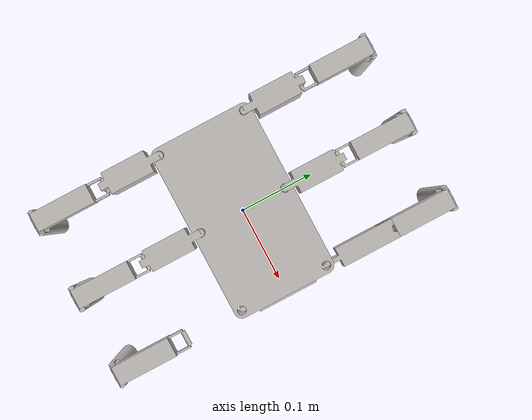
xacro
<?xml version="1.0" ?>

<robot name="hexapod" xmlns:xacro="http://wiki.ros.org/xacro">

    <xacro:include filename="$(find hexapod)/urdf/hexapod.gazebo" />
    <xacro:include filename="$(find hexapod)/urdf/hexapod.urdf" />

    <xacro:macro name="transmission_block" params="joint_name">
    <transmission name="trans1">
      <type>transmission_interface/SimpleTransmission</type>
      <joint name="${joint_name}">
        <hardwareInterface>hardware_interface/EffortJointInterface</hardwareInterface>
      </joint>
      <actuator name="motor1">
        <hardwareInterface>hardware_interface/EffortJointInterface</hardwareInterface>
        <mechanicalReduction>1</mechanicalReduction>
      </actuator>
    </transmission>
  </xacro:macro>

    <xacro:transmission_block joint_name="body_leg_0"/>
    <xacro:transmission_block joint_name="body_leg_1"/>
    <xacro:transmission_block joint_name="body_leg_2"/>
    <xacro:transmission_block joint_name="body_leg_3"/>
    <xacro:transmission_block joint_name="body_leg_4"/>
    <xacro:transmission_block joint_name="body_leg_5"/>

    <xacro:transmission_block joint_name="leg_0_1_2"/>
    <xacro:transmission_block joint_name="leg_1_1_2"/>
    <xacro:transmission_block joint_name="leg_2_1_2"/>
    <xacro:transmission_block joint_name="leg_3_1_2"/>
    <xacro:transmission_block joint_name="leg_4_1_2"/>
    <xacro:transmission_block joint_name="leg_5_1_2"/>

    <xacro:transmission_block joint_name="leg_0_2_3"/>
    <xacro:transmission_block joint_name="leg_1_2_3"/>
    <xacro:transmission_block joint_name="leg_2_2_3"/>
    <xacro:transmission_block joint_name="leg_3_2_3"/>
    <xacro:transmission_block joint_name="leg_4_2_3"/>
    <xacro:transmission_block joint_name="leg_5_2_3"/>

</robot>

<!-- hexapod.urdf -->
<robot
  name="hexapod">
  <link name="base_link"/>
    <joint name="j_phantomx_attachment" type="fixed">
    <parent link="base_link"/>
    <child link="BODY"/>
    <origin rpy="0 0 0" xyz="0 0 0"/>
  </joint>
  <link
    name="BODY">
    <inertial>
      <origin
        xyz="1.6123E-18 2.0011E-17 0.02"
        rpy="0 0 0" />
      <mass
        value="10.113" />
      <inertia
        ixx="0.017376"
        ixy="1.3248E-18"
        ixz="-2.583E-20"
        iyy="0.048968"
        iyz="4.6469E-19"
        izz="0.063647" />
    </inertial>
    <visual>
      <origin
        xyz="0 0 0"
        rpy="0 0 0" />
      <geometry>
        <mesh
          filename="package://hexapod/meshes/base_link.STL" />
      </geometry>
      <material
        name="">
        <color
          rgba="0.77647 0.75686 0.73725 1" />
      </material>
    </visual>
    <collision>
      <origin
        xyz="0 0 0"
        rpy="0 0 0" />
      <geometry>
        <mesh
          filename="package://hexapod/meshes/base_link.STL" />
      </geometry>
    </collision>
  </link>
  <link
    name="leg_0_1">
    <inertial>
      <origin
        xyz="-1.3878E-17 -0.044545 -3.4694E-18"
        rpy="0 0 0" />
      <mass
        value="0.72839" />
      <inertia
        ixx="0.00043937"
        ixy="-8.7578E-21"
        ixz="1.2531E-20"
        iyy="0.00019126"
        iyz="-6.4529E-20"
        izz="0.00034884" />
    </inertial>
    <visual>
      <origin
        xyz="0 0 0"
        rpy="0 0 0" />
      <geometry>
        <mesh
          filename="package://hexapod/meshes/leg_0_1.STL" />
      </geometry>
      <material
        name="">
        <color
          rgba="0.77647 0.75686 0.73725 1" />
      </material>
    </visual>
    <collision>
      <origin
        xyz="0 0 0"
        rpy="0 0 0" />
      <geometry>
        <mesh
          filename="package://hexapod/meshes/leg_0_1.STL" />
      </geometry>
    </collision>
  </link>
  <joint
    name="body_leg_0"
    type="continuous">
    <origin
      xyz="0.11 -0.06 0.02"
      rpy="0 0 0" />
    <parent
      link="base_link" />
    <child
      link="leg_0_1" />
    <axis
      xyz="0 0 1" />
    <limit
      lower="-1.57"
      upper="1.57"
      effort="30"
      velocity="3" />
  </joint>
  <link
    name="leg_0_2">
    <inertial>
      <origin
        xyz="1.0408E-17 0.058002 4.1633E-16"
        rpy="0 0 0" />
      <mass
        value="0.41845" />
      <inertia
        ixx="0.00026275"
        ixy="-4.5843E-20"
        ixz="1.1727E-21"
        iyy="4.7333E-05"
        iyz="1.0004E-20"
        izz="0.00026229" />
    </inertial>
    <visual>
      <origin
        xyz="0 0 0"
        rpy="0 0 0" />
      <geometry>
        <mesh
          filename="package://hexapod/meshes/leg_0_2.STL" />
      </geometry>
      <material
        name="">
        <color
          rgba="0.77647 0.75686 0.73725 1" />
      </material>
    </visual>
    <collision>
      <origin
        xyz="0 0 0"
        rpy="0 0 0" />
      <geometry>
        <mesh
          filename="package://hexapod/meshes/leg_0_2.STL" />
      </geometry>
    </collision>
  </link>
  <joint
    name="leg_0_1_2"
    type="revolute">
    <origin
      xyz="0 -0.08 0"
      rpy="3.1416 1.5708 0" />
    <parent
      link="leg_0_1" />
    <child
      link="leg_0_2" />
    <axis
      xyz="0 0 -1" />
    <limit
      lower="-1.57"
      upper="1.57"
      effort="30"
      velocity="3" />
  </joint>
  <link
    name="leg_0_3">
    <inertial>
      <origin
        xyz="0.084869 3.0882E-05 8.1879E-16"
        rpy="0 0 0" />
      <mass
        value="0.60411" />
      <inertia
        ixx="6.6228E-05"
        ixy="-9.4646E-08"
        ixz="-8.0496E-21"
        iyy="0.0010646"
        iyz="6.6317E-21"
        izz="0.0010259" />
    </inertial>
    <visual>
      <origin
        xyz="0 0 0"
        rpy="0 0 0" />
      <geometry>
        <mesh
          filename="package://hexapod/meshes/leg_0_3.STL" />
      </geometry>
      <material
        name="">
        <color
          rgba="0.77647 0.75686 0.73725 1" />
      </material>
    </visual>
    <collision>
      <origin
        xyz="0 0 0"
        rpy="0 0 0" />
      <geometry>
        <mesh
          filename="package://hexapod/meshes/leg_0_3.STL" />
      </geometry>
    </collision>
  </link>
  <joint
    name="leg_0_2_3"
    type="revolute">
    <origin
      xyz="0 0.1 0"
      rpy="0 0 0" />
    <parent
      link="leg_0_2" />
    <child
      link="leg_0_3" />
    <axis
      xyz="0 0 -1" />
    <limit
      lower="-1.57"
      upper="1.57"
      effort="30"
      velocity="3" />
  </joint>
  <link
    name="leg_1_1">
    <inertial>
      <origin
        xyz="8.3946E-19 -0.044545 -3.4694E-18"
        rpy="0 0 0" />
      <mass
        value="0.72839" />
      <inertia
        ixx="0.00043937"
        ixy="-5.1676E-21"
        ixz="1.8426E-20"
        iyy="0.00019126"
        iyz="-5.4987E-20"
        izz="0.00034884" />
    </inertial>
    <visual>
      <origin
        xyz="0 0 0"
        rpy="0 0 0" />
      <geometry>
        <mesh
          filename="package://hexapod/meshes/leg_1_1.STL" />
      </geometry>
      <material
        name="">
        <color
          rgba="0.77647 0.75686 0.73725 1" />
      </material>
    </visual>
    <collision>
      <origin
        xyz="0 0 0"
        rpy="0 0 0" />
      <geometry>
        <mesh
          filename="package://hexapod/meshes/leg_1_1.STL" />
      </geometry>
    </collision>
  </link>
  <joint
    name="body_leg_1"
    type="revolute">
    <origin
      xyz="0 -0.06 0.02"
      rpy="0 0 0" />
    <parent
      link="base_link" />
    <child
      link="leg_1_1" />
    <axis
      xyz="0 0 1" />
    <limit
      lower="-1.57"
      upper="1.57"
      effort="30"
      velocity="3" />
  </joint>
  <link
    name="leg_1_2">
    <inertial>
      <origin
        xyz="3.4694E-18 0.058002 6.9159E-16"
        rpy="0 0 0" />
      <mass
        value="0.41845" />
      <inertia
        ixx="0.00026275"
        ixy="-2.0171E-20"
        ixz="1.468E-21"
        iyy="4.7333E-05"
        iyz="1.2515E-22"
        izz="0.00026229" />
    </inertial>
    <visual>
      <origin
        xyz="0 0 0"
        rpy="0 0 0" />
      <geometry>
        <mesh
          filename="package://hexapod/meshes/leg_1_2.STL" />
      </geometry>
      <material
        name="">
        <color
          rgba="0.77647 0.75686 0.73725 1" />
      </material>
    </visual>
    <collision>
      <origin
        xyz="0 0 0"
        rpy="0 0 0" />
      <geometry>
        <mesh
          filename="package://hexapod/meshes/leg_1_2.STL" />
      </geometry>
    </collision>
  </link>
  <joint
    name="leg_1_1_2"
    type="revolute">
    <origin
      xyz="0 -0.08 0"
      rpy="3.1416 1.5708 0" />
    <parent
      link="leg_1_1" />
    <child
      link="leg_1_2" />
    <axis
      xyz="0 0 -1" />
    <limit
      lower="-1.57"
      upper="1.57"
      effort="30"
      velocity="3" />
  </joint>
  <link
    name="leg_1_3">
    <inertial>
      <origin
        xyz="0.084869 3.0882E-05 1.1215E-15"
        rpy="0 0 0" />
      <mass
        value="0.60411" />
      <inertia
        ixx="6.6228E-05"
        ixy="-9.4646E-08"
        ixz="1.4558E-20"
        iyy="0.0010646"
        iyz="6.946E-21"
        izz="0.0010259" />
    </inertial>
    <visual>
      <origin
        xyz="0 0 0"
        rpy="0 0 0" />
      <geometry>
        <mesh
          filename="package://hexapod/meshes/leg_1_3.STL" />
      </geometry>
      <material
        name="">
        <color
          rgba="0.77647 0.75686 0.73725 1" />
      </material>
    </visual>
    <collision>
      <origin
        xyz="0 0 0"
        rpy="0 0 0" />
      <geometry>
        <mesh
          filename="package://hexapod/meshes/leg_1_3.STL" />
      </geometry>
    </collision>
  </link>
  <joint
    name="leg_1_2_3"
    type="revolute">
    <origin
      xyz="0 0.1 0"
      rpy="0 0 0" />
    <parent
      link="leg_1_2" />
    <child
      link="leg_1_3" />
    <axis
      xyz="0 0 -1" />
    <limit
      lower="-1.57"
      upper="1.57"
      effort="30"
      velocity="3" />
  </joint>
  <link
    name="leg_2_1">
    <inertial>
      <origin
        xyz="0 -0.0445450847414412 -3.46944695195361E-18"
        rpy="0 0 0" />
      <mass
        value="0.728389334455051" />
      <inertia
        ixx="0.000439366489580605"
        ixy="-9.68414164900796E-21"
        ixz="1.25312997166837E-20"
        iyy="0.000191259700311432"
        iyz="-6.18146469128453E-20"
        izz="0.000348844779107573" />
    </inertial>
    <visual>
      <origin
        xyz="0 0 0"
        rpy="0 0 0" />
      <geometry>
        <mesh
          filename="package://hexapod/meshes/leg_2_1.STL" />
      </geometry>
      <material
        name="">
        <color
          rgba="0.776470588235294 0.756862745098039 0.737254901960784 1" />
      </material>
    </visual>
    <collision>
      <origin
        xyz="0 0 0"
        rpy="0 0 0" />
      <geometry>
        <mesh
          filename="package://hexapod/meshes/leg_2_1.STL" />
      </geometry>
    </collision>
  </link>
  <joint
    name="body_leg_2"
    type="revolute">
    <origin
      xyz="-0.11 -0.06 0.02"
      rpy="0 0 0" />
    <parent
      link="base_link" />
    <child
      link="leg_2_1" />
    <axis
      xyz="0 0 1" />
    <limit
      lower="-1.57"
      upper="1.57"
      effort="30"
      velocity="3" />
  </joint>
  <link
    name="leg_2_2">
    <inertial>
      <origin
        xyz="3.46944695195361E-18 0.0580015769708153 4.16333634234434E-16"
        rpy="0 0 0" />
      <mass
        value="0.418452411802267" />
      <inertia
        ixx="0.000262751554672186"
        ixy="-2.29707246501853E-20"
        ixz="1.17440633782818E-21"
        iyy="4.73331054250092E-05"
        iyz="8.90910991327263E-21"
        izz="0.000262289237082029" />
    </inertial>
    <visual>
      <origin
        xyz="0 0 0"
        rpy="0 0 0" />
      <geometry>
        <mesh
          filename="package://hexapod/meshes/leg_2_2.STL" />
      </geometry>
      <material
        name="">
        <color
          rgba="0.776470588235294 0.756862745098039 0.737254901960784 1" />
      </material>
    </visual>
    <collision>
      <origin
        xyz="0 0 0"
        rpy="0 0 0" />
      <geometry>
        <mesh
          filename="package://hexapod/meshes/leg_2_2.STL" />
      </geometry>
    </collision>
  </link>
  <joint
    name="leg_2_1_2"
    type="revolute">
    <origin
      xyz="0 -0.08 0"
      rpy="3.1416 1.5708 0" />
    <parent
      link="leg_2_1" />
    <child
      link="leg_2_2" />
    <axis
      xyz="0 0 -1" />
    <limit
      lower="-1.57"
      upper="1.57"
      effort="30"
      velocity="3" />
  </joint>
  <link
    name="leg_2_3">
    <inertial>
      <origin
        xyz="0.0848685291504994 3.08818446349557E-05 8.46545056276682E-16"
        rpy="0 0 0" />
      <mass
        value="0.604107235995325" />
      <inertia
        ixx="6.62284657464222E-05"
        ixy="-9.46460575317657E-08"
        ixz="-1.41036926063462E-20"
        iyy="0.0010645650517775"
        iyz="3.46274953425248E-21"
        izz="0.0010258729180328" />
    </inertial>
    <visual>
      <origin
        xyz="0 0 0"
        rpy="0 0 0" />
      <geometry>
        <mesh
          filename="package://hexapod/meshes/leg_2_3.STL" />
      </geometry>
      <material
        name="">
        <color
          rgba="0.776470588235294 0.756862745098039 0.737254901960784 1" />
      </material>
    </visual>
    <collision>
      <origin
        xyz="0 0 0"
        rpy="0 0 0" />
      <geometry>
        <mesh
          filename="package://hexapod/meshes/leg_2_3.STL" />
      </geometry>
    </collision>
  </link>
  <joint
    name="leg_2_2_3"
    type="revolute">
    <origin
      xyz="0 0.1 0"
      rpy="0 0 0" />
    <parent
      link="leg_2_2" />
    <child
      link="leg_2_3" />
    <axis
      xyz="0 0 -1" />
    <limit
      lower="-1.57"
      upper="1.57"
      effort="30"
      velocity="3" />
  </joint>
  <link
    name="leg_3_1">
    <inertial>
      <origin
        xyz="-3.33066907387547E-16 0.0445450847414412 -3.46944695195361E-18"
        rpy="0 0 0" />
      <mass
        value="0.728389334455052" />
      <inertia
        ixx="0.000439366489580605"
        ixy="1.73224222987974E-18"
        ixz="-1.04914228023895E-20"
        iyy="0.000191259700311432"
        iyz="5.99711139565986E-20"
        izz="0.000348844779107574" />
    </inertial>
    <visual>
      <origin
        xyz="0 0 0"
        rpy="0 0 0" />
      <geometry>
        <mesh
          filename="package://hexapod/meshes/leg_3_1.STL" />
      </geometry>
      <material
        name="">
        <color
          rgba="0.776470588235294 0.756862745098039 0.737254901960784 1" />
      </material>
    </visual>
    <collision>
      <origin
        xyz="0 0 0"
        rpy="0 0 0" />
      <geometry>
        <mesh
          filename="package://hexapod/meshes/leg_3_1.STL" />
      </geometry>
    </collision>
  </link>
  <joint
    name="body_leg_3"
    type="revolute">
    <origin
      xyz="-0.11 0.06 0.02"
      rpy="0 0 0" />
    <parent
      link="base_link" />
    <child
      link="leg_3_1" />
    <axis
      xyz="0 0 1" />
    <limit
      lower="-1.57"
      upper="1.57"
      effort="30"
      velocity="3" />
  </joint>
  <link
    name="leg_3_2">
    <inertial>
      <origin
        xyz="3.46944695195361E-18 0.0580015769708153 -1.52655665885959E-16"
        rpy="0 0 0" />
      <mass
        value="0.418452411802267" />
      <inertia
        ixx="0.000262751554672186"
        ixy="-3.19297811222879E-20"
        ixz="-1.82686702704007E-21"
        iyy="4.73331054250092E-05"
        iyz="3.83984040313595E-21"
        izz="0.000262289237082029" />
    </inertial>
    <visual>
      <origin
        xyz="0 0 0"
        rpy="0 0 0" />
      <geometry>
        <mesh
          filename="package://hexapod/meshes/leg_3_2.STL" />
      </geometry>
      <material
        name="">
        <color
          rgba="0.776470588235294 0.756862745098039 0.737254901960784 1" />
      </material>
    </visual>
    <collision>
      <origin
        xyz="0 0 0"
        rpy="0 0 0" />
      <geometry>
        <mesh
          filename="package://hexapod/meshes/leg_3_2.STL" />
      </geometry>
    </collision>
  </link>
  <joint
    name="leg_3_1_2"
    type="revolute">
    <origin
      xyz="0 0.08 0"
      rpy="0 1.5708 0" />
    <parent
      link="leg_3_1" />
    <child
      link="leg_3_2" />
    <axis
      xyz="0 0 -1" />
    <limit
      lower="-1.57"
      upper="1.57"
      effort="30"
      velocity="3" />
  </joint>
  <link
    name="leg_3_3">
    <inertial>
      <origin
        xyz="0.0848685291504994 3.08818446349002E-05 -4.44089209850063E-16"
        rpy="0 0 0" />
      <mass
        value="0.604107235995325" />
      <inertia
        ixx="6.62284657464222E-05"
        ixy="-9.46460575317819E-08"
        ixz="-1.36468729878862E-20"
        iyy="0.0010645650517775"
        iyz="1.69186859746484E-20"
        izz="0.0010258729180328" />
    </inertial>
    <visual>
      <origin
        xyz="0 0 0"
        rpy="0 0 0" />
      <geometry>
        <mesh
          filename="package://hexapod/meshes/leg_3_3.STL" />
      </geometry>
      <material
        name="">
        <color
          rgba="0.776470588235294 0.756862745098039 0.737254901960784 1" />
      </material>
    </visual>
    <collision>
      <origin
        xyz="0 0 0"
        rpy="0 0 0" />
      <geometry>
        <mesh
          filename="package://hexapod/meshes/leg_3_3.STL" />
      </geometry>
    </collision>
  </link>
  <joint
    name="leg_3_2_3"
    type="revolute">
    <origin
      xyz="0 0.1 0"
      rpy="0 0 0" />
    <parent
      link="leg_3_2" />
    <child
      link="leg_3_3" />
    <axis
      xyz="0 0 -1" />
    <limit
      lower="-1.57"
      upper="1.57"
      effort="30"
      velocity="3" />
  </joint>
  <link
    name="leg_4_1">
    <inertial>
      <origin
        xyz="-3.10207390283982E-16 0.0445450847414412 -3.46944695195361E-18"
        rpy="0 0 0" />
      <mass
        value="0.728389334455052" />
      <inertia
        ixx="0.000439366489580605"
        ixy="1.71212669776875E-18"
        ixz="-1.85376953020843E-20"
        iyy="0.000191259700311432"
        iyz="5.84109266813159E-20"
        izz="0.000348844779107574" />
    </inertial>
    <visual>
      <origin
        xyz="0 0 0"
        rpy="0 0 0" />
      <geometry>
        <mesh
          filename="package://hexapod/meshes/leg_4_1.STL" />
      </geometry>
      <material
        name="">
        <color
          rgba="0.776470588235294 0.756862745098039 0.737254901960784 1" />
      </material>
    </visual>
    <collision>
      <origin
        xyz="0 0 0"
        rpy="0 0 0" />
      <geometry>
        <mesh
          filename="package://hexapod/meshes/leg_4_1.STL" />
      </geometry>
    </collision>
  </link>
  <joint
    name="body_leg_4"
    type="revolute">
    <origin
      xyz="0 0.06 0.02"
      rpy="0 0 0" />
    <parent
      link="base_link" />
    <child
      link="leg_4_1" />
    <axis
      xyz="0 0 1" />
    <limit
      lower="-1.57"
      upper="1.57"
      effort="30"
      velocity="3" />
  </joint>
  <link
    name="leg_4_2">
    <inertial>
      <origin
        xyz="1.38777878078145E-17 0.0580015769708153 -4.44383469065972E-16"
        rpy="0 0 0" />
      <mass
        value="0.418452411802267" />
      <inertia
        ixx="0.000262751554672186"
        ixy="-5.39530835154313E-20"
        ixz="1.85302270824603E-21"
        iyy="4.73331054250092E-05"
        iyz="4.22125501442446E-21"
        izz="0.000262289237082029" />
    </inertial>
    <visual>
      <origin
        xyz="0 0 0"
        rpy="0 0 0" />
      <geometry>
        <mesh
          filename="package://hexapod/meshes/leg_4_2.STL" />
      </geometry>
      <material
        name="">
        <color
          rgba="0.776470588235294 0.756862745098039 0.737254901960784 1" />
      </material>
    </visual>
    <collision>
      <origin
        xyz="0 0 0"
        rpy="0 0 0" />
      <geometry>
        <mesh
          filename="package://hexapod/meshes/leg_4_2.STL" />
      </geometry>
    </collision>
  </link>
  <joint
    name="leg_4_1_2"
    type="revolute">
    <origin
      xyz="0 0.08 0"
      rpy="0 1.5708 0" />
    <parent
      link="leg_4_1" />
    <child
      link="leg_4_2" />
    <axis
      xyz="0 0 -1" />
    <limit
      lower="-1.57"
      upper="1.57"
      effort="30"
      velocity="3" />
  </joint>
  <link
    name="leg_4_3">
    <inertial>
      <origin
        xyz="0.0848685291504994 3.08818446349279E-05 -7.27946480685188E-16"
        rpy="0 0 0" />
      <mass
        value="0.604107235995325" />
      <inertia
        ixx="6.62284657464222E-05"
        ixy="-9.46460575317807E-08"
        ixz="8.79682739135738E-21"
        iyy="0.0010645650517775"
        iyz="1.06402762826064E-20"
        izz="0.0010258729180328" />
    </inertial>
    <visual>
      <origin
        xyz="0 0 0"
        rpy="0 0 0" />
      <geometry>
        <mesh
          filename="package://hexapod/meshes/leg_4_3.STL" />
      </geometry>
      <material
        name="">
        <color
          rgba="0.776470588235294 0.756862745098039 0.737254901960784 1" />
      </material>
    </visual>
    <collision>
      <origin
        xyz="0 0 0"
        rpy="0 0 0" />
      <geometry>
        <mesh
          filename="package://hexapod/meshes/leg_4_3.STL" />
      </geometry>
    </collision>
  </link>
  <joint
    name="leg_4_2_3"
    type="revolute">
    <origin
      xyz="0 0.1 0"
      rpy="0 0 0" />
    <parent
      link="leg_4_2" />
    <child
      link="leg_4_3" />
    <axis
      xyz="0 0 -1" />
    <limit
      lower="-1.57"
      upper="1.57"
      effort="30"
      velocity="3" />
  </joint>
  <link
    name="leg_5_1">
    <inertial>
      <origin
        xyz="-3.05311331771918E-16 0.0445450847414412 -3.46944695195361E-18"
        rpy="0 0 0" />
      <mass
        value="0.728389334455052" />
      <inertia
        ixx="0.000439366489580605"
        ixy="1.73270541333655E-18"
        ixz="-1.04894919526316E-20"
        iyy="0.000191259700311432"
        iyz="6.32437500027912E-20"
        izz="0.000348844779107574" />
    </inertial>
    <visual>
      <origin
        xyz="0 0 0"
        rpy="0 0 0" />
      <geometry>
        <mesh
          filename="package://hexapod/meshes/leg_5_1.STL" />
      </geometry>
      <material
        name="">
        <color
          rgba="0.776470588235294 0.756862745098039 0.737254901960784 1" />
      </material>
    </visual>
    <collision>
      <origin
        xyz="0 0 0"
        rpy="0 0 0" />
      <geometry>
        <mesh
          filename="package://hexapod/meshes/leg_5_1.STL" />
      </geometry>
    </collision>
  </link>
  <joint
    name="body_leg_5"
    type="revolute">
    <origin
      xyz="0.11 0.06 0.02"
      rpy="0 0 0" />
    <parent
      link="base_link" />
    <child
      link="leg_5_1" />
    <axis
      xyz="0 0 1" />
    <limit
      lower="-1.57"
      upper="1.57"
      effort="30"
      velocity="3" />
  </joint>
  <link
    name="leg_5_2">
    <inertial>
      <origin
        xyz="1.04083408558608E-17 0.0580015769708153 -1.2490009027033E-16"
        rpy="0 0 0" />
      <mass
        value="0.418452411802267" />
      <inertia
        ixx="0.000262751554672186"
        ixy="-5.50747586323413E-20"
        ixz="-1.83205374665578E-21"
        iyy="4.73331054250092E-05"
        iyz="3.64508569336397E-21"
        izz="0.000262289237082029" />
    </inertial>
    <visual>
      <origin
        xyz="0 0 0"
        rpy="0 0 0" />
      <geometry>
        <mesh
          filename="package://hexapod/meshes/leg_5_2.STL" />
      </geometry>
      <material
        name="">
        <color
          rgba="0.776470588235294 0.756862745098039 0.737254901960784 1" />
      </material>
    </visual>
    <collision>
      <origin
        xyz="0 0 0"
        rpy="0 0 0" />
      <geometry>
        <mesh
          filename="package://hexapod/meshes/leg_5_2.STL" />
      </geometry>
    </collision>
  </link>
  <joint
    name="leg_5_1_2"
    type="revolute">
    <origin
      xyz="0 0.08 0"
      rpy="0 1.5708 0" />
    <parent
      link="leg_5_1" />
    <child
      link="leg_5_2" />
    <axis
      xyz="0 0 -1" />
    <limit
      lower="-1.57"
      upper="1.57"
      effort="30"
      velocity="3" />
  </joint>
  <link
    name="leg_5_3">
    <inertial>
      <origin
        xyz="0.084869 3.0882E-05 -4.4409E-16"
        rpy="0 0 0" />
      <mass
        value="0.60411" />
      <inertia
        ixx="6.6228E-05"
        ixy="-9.4646E-08"
        ixz="1.4534E-22"
        iyy="0.0010646"
        iyz="1.5418E-20"
        izz="0.0010259" />
    </inertial>
    <visual>
      <origin
        xyz="0 0 0"
        rpy="0 0 0" />
      <geometry>
        <mesh
          filename="package://hexapod/meshes/leg_5_3.STL" />
      </geometry>
      <material
        name="">
        <color
          rgba="0.77647 0.75686 0.73725 1" />
      </material>
    </visual>
    <collision>
      <origin
        xyz="0 0 0"
        rpy="0 0 0" />
      <geometry>
        <mesh
          filename="package://hexapod/meshes/leg_5_3.STL" />
      </geometry>
    </collision>
  </link>
  <joint
    name="leg_5_2_3"
    type="revolute">
    <origin
      xyz="0 0.1 0"
      rpy="0 0 0" />
    <parent
      link="leg_5_2" />
    <child
      link="leg_5_3" />
    <axis
      xyz="0 0 -1" />
    <limit
      lower="-1.57"
      upper="1.57"
      effort="30"
      velocity="3" />
  </joint>
</robot>
